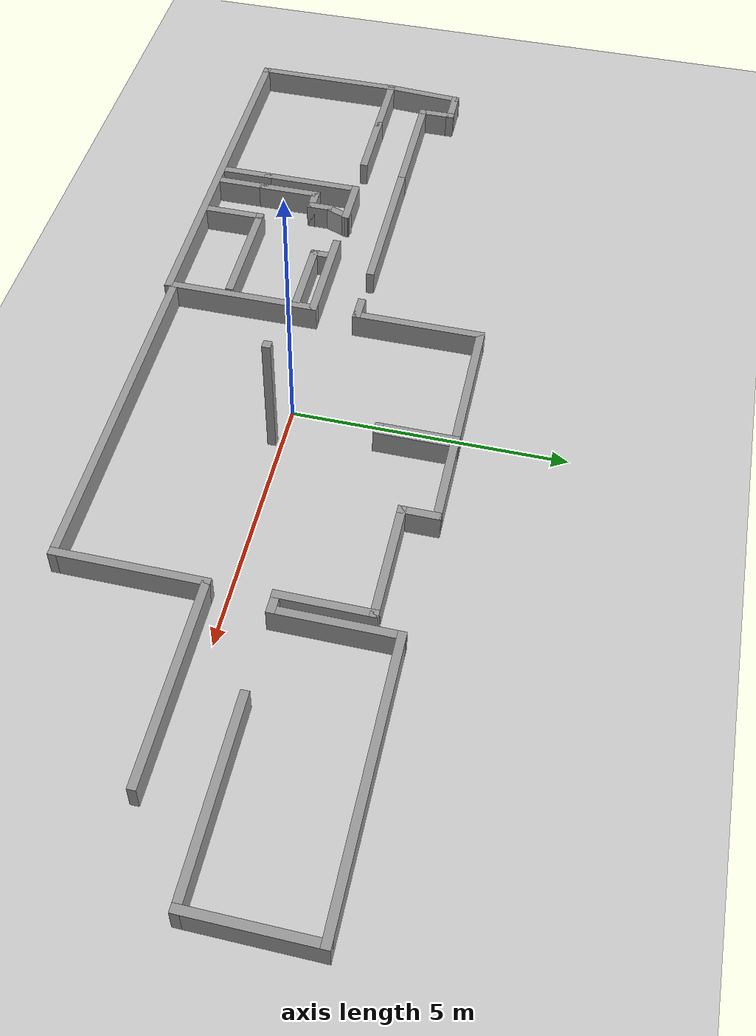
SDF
<?xml version="1.0"?>
<sdf version="1.4">
    <world name="office">
        <include>
            <uri>model://sun</uri>
        </include>

        <include>
            <uri>model://ground_plane</uri>
        </include>

        <include>
            <uri>model://racecar_description/models/home</uri>
            <pose>0 0 0 0 0 0</pose>
        </include>

        <gui>
            <camera name="user_camera">
                <pose>-1.62 -5.53 18.0 0 1.36 1.56</pose>
            </camera>
        </gui>
    </world>
</sdf>

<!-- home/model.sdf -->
<sdf version='1.6'>
  <model name='home'>
    <pose frame=''>2.81751 -1.485 0 0 -0 0</pose>
    <link name='Wall_12'>
      <collision name='Wall_12_Collision'>
        <geometry>
          <box>
            <size>0.5 0.15 0.5</size>
          </box>
        </geometry>
        <pose frame=''>0 0 0.25 0 -0 0</pose>
      </collision>
      <visual name='Wall_12_Visual'>
        <pose frame=''>0 0 0.25 0 -0 0</pose>
        <geometry>
          <box>
            <size>0.5 0.15 0.5</size>
          </box>
        </geometry>
        <material>
          <script>
            <uri>file://media/materials/scripts/gazebo.material</uri>
            <name>Gazebo/Grey</name>
          </script>
          <ambient>1 1 1 1</ambient>
        </material>
        <meta>
          <layer>0</layer>
        </meta>
      </visual>
      <pose frame=''>-2.42251 0.675 0 0 -0 3.14159</pose>
    </link>
    <link name='Wall_17'>
      <collision name='Wall_17_Collision'>
        <geometry>
          <box>
            <size>3 0.15 0.5</size>
          </box>
        </geometry>
        <pose frame=''>0 0 0.25 0 -0 0</pose>
      </collision>
      <visual name='Wall_17_Visual'>
        <pose frame=''>0 0 0.25 0 -0 0</pose>
        <geometry>
          <box>
            <size>3 0.15 0.5</size>
          </box>
        </geometry>
        <material>
          <script>
            <uri>file://media/materials/scripts/gazebo.material</uri>
            <name>Gazebo/Grey</name>
          </script>
          <ambient>1 1 1 1</ambient>
        </material>
        <meta>
          <layer>0</layer>
        </meta>
      </visual>
      <pose frame=''>-4.87251 0.675 0 0 -0 3.14159</pose>
    </link>
    <link name='Wall_2'>
      <collision name='Wall_2_Collision'>
        <geometry>
          <box>
            <size>0.15 0.15 2.5</size>
          </box>
        </geometry>
        <pose frame=''>0 0 1.25 0 -0 0</pose>
      </collision>
      <visual name='Wall_2_Visual'>
        <pose frame=''>0 0 1.25 0 -0 0</pose>
        <geometry>
          <box>
            <size>0.15 0.15 2.5</size>
          </box>
        </geometry>
        <material>
          <script>
            <uri>file://media/materials/scripts/gazebo.material</uri>
            <name>Gazebo/Grey</name>
          </script>
          <ambient>1 1 1 1</ambient>
        </material>
        <meta>
          <layer>0</layer>
        </meta>
      </visual>
      <pose frame=''>0.728138 -0.175 0 0 -0 0</pose>
    </link>
    <link name='Wall_21'>
      <collision name='Wall_21_Collision'>
        <geometry>
          <box>
            <size>1 0.15 0.5</size>
          </box>
        </geometry>
        <pose frame=''>0 0 0.25 0 -0 0</pose>
      </collision>
      <visual name='Wall_21_Visual'>
        <pose frame=''>0 0 0.25 0 -0 0</pose>
        <geometry>
          <box>
            <size>1 0.15 0.5</size>
          </box>
        </geometry>
        <material>
          <script>
            <uri>file://media/materials/scripts/gazebo.material</uri>
            <name>Gazebo/Grey</name>
          </script>
          <ambient>1 1 1 1</ambient>
        </material>
        <meta>
          <layer>0</layer>
        </meta>
      </visual>
      <pose frame=''>-5.37251 -0.175 0 0 -0 3.14159</pose>
    </link>
    <link name='Wall_25'>
      <collision name='Wall_25_Collision'>
        <geometry>
          <box>
            <size>1.5 0.15 0.5</size>
          </box>
        </geometry>
        <pose frame=''>0 0 0.25 0 -0 0</pose>
      </collision>
      <visual name='Wall_25_Visual'>
        <pose frame=''>0 0 0.25 0 -0 0</pose>
        <geometry>
          <box>
            <size>1.5 0.15 0.5</size>
          </box>
        </geometry>
        <material>
          <script>
            <uri>file://media/materials/scripts/gazebo.material</uri>
            <name>Gazebo/Grey</name>
          </script>
          <ambient>1 1 1 1</ambient>
        </material>
        <meta>
          <layer>0</layer>
        </meta>
      </visual>
      <pose frame=''>-7.32251 -0.175 0 0 -0 3.14159</pose>
    </link>
    <link name='Wall_27'>
      <collision name='Wall_27_Collision'>
        <geometry>
          <box>
            <size>2 0.15 0.5</size>
          </box>
        </geometry>
        <pose frame=''>0 0 0.25 0 -0 0</pose>
      </collision>
      <visual name='Wall_27_Visual'>
        <pose frame=''>0 0 0.25 0 -0 0</pose>
        <geometry>
          <box>
            <size>2 0.15 0.5</size>
          </box>
        </geometry>
        <material>
          <script>
            <uri>file://media/materials/scripts/gazebo.material</uri>
            <name>Gazebo/Grey</name>
          </script>
          <ambient>1 1 1 1</ambient>
        </material>
        <meta>
          <layer>0</layer>
        </meta>
      </visual>
      <pose frame=''>-5.79751 -1.1 0 0 -0 -1.5708</pose>
    </link>
    <link name='Wall_29'>
      <collision name='Wall_29_Collision'>
        <geometry>
          <box>
            <size>1.25 0.15 0.5</size>
          </box>
        </geometry>
        <pose frame=''>0 0 0.25 0 -0 0</pose>
      </collision>
      <visual name='Wall_29_Visual'>
        <pose frame=''>0 0 0.25 0 -0 0</pose>
        <geometry>
          <box>
            <size>1.25 0.15 0.5</size>
          </box>
        </geometry>
        <material>
          <script>
            <uri>file://media/materials/scripts/gazebo.material</uri>
            <name>Gazebo/Grey</name>
          </script>
          <ambient>1 1 1 1</ambient>
        </material>
        <meta>
          <layer>0</layer>
        </meta>
      </visual>
      <pose frame=''>-5.44751 -1.475 0 0 -0 1.5708</pose>
    </link>
    <link name='Wall_30'>
      <collision name='Wall_30_Collision'>
        <geometry>
          <box>
            <size>0.5 0.15 0.5</size>
          </box>
        </geometry>
        <pose frame=''>0 0 0.25 0 -0 0</pose>
      </collision>
      <visual name='Wall_30_Visual'>
        <pose frame=''>0 0 0.25 0 -0 0</pose>
        <geometry>
          <box>
            <size>0.5 0.15 0.5</size>
          </box>
        </geometry>
        <material>
          <script>
            <uri>file://media/materials/scripts/gazebo.material</uri>
            <name>Gazebo/Grey</name>
          </script>
          <ambient>1 1 1 1</ambient>
        </material>
        <meta>
          <layer>0</layer>
        </meta>
      </visual>
      <pose frame=''>-5.27251 -0.925 0 0 -0 0</pose>
    </link>
    <link name='Wall_32'>
      <collision name='Wall_32_Collision'>
        <geometry>
          <box>
            <size>0.5 0.15 0.5</size>
          </box>
        </geometry>
        <pose frame=''>0 0 0.25 0 -0 0</pose>
      </collision>
      <visual name='Wall_32_Visual'>
        <pose frame=''>0 0 0.25 0 -0 0</pose>
        <geometry>
          <box>
            <size>0.5 0.15 0.5</size>
          </box>
        </geometry>
        <material>
          <script>
            <uri>file://media/materials/scripts/gazebo.material</uri>
            <name>Gazebo/Grey</name>
          </script>
          <ambient>1 1 1 1</ambient>
        </material>
        <meta>
          <layer>0</layer>
        </meta>
      </visual>
      <pose frame=''>-5.09751 -0.75 0 0 -0 1.5708</pose>
    </link>
    <link name='Wall_33'>
      <collision name='Wall_33_Collision'>
        <geometry>
          <box>
            <size>0.5772 0.15 0.5</size>
          </box>
        </geometry>
        <pose frame=''>0 0 0.25 0 -0 0</pose>
      </collision>
      <visual name='Wall_33_Visual'>
        <pose frame=''>0 0 0.25 0 -0 0</pose>
        <geometry>
          <box>
            <size>0.5772 0.15 0.5</size>
          </box>
        </geometry>
        <material>
          <script>
            <uri>file://media/materials/scripts/gazebo.material</uri>
            <name>Gazebo/Grey</name>
          </script>
          <ambient>1 1 1 1</ambient>
        </material>
        <meta>
          <layer>0</layer>
        </meta>
      </visual>
      <pose frame=''>-5.02251 -0.375 0 0 -0 1.21203</pose>
    </link>
    <link name='Wall_35'>
      <collision name='Wall_35_Collision'>
        <geometry>
          <box>
            <size>0.5 0.15 0.5</size>
          </box>
        </geometry>
        <pose frame=''>0 0 0.25 0 -0 0</pose>
      </collision>
      <visual name='Wall_35_Visual'>
        <pose frame=''>0 0 0.25 0 -0 0</pose>
        <geometry>
          <box>
            <size>0.5 0.15 0.5</size>
          </box>
        </geometry>
        <material>
          <script>
            <uri>file://media/materials/scripts/gazebo.material</uri>
            <name>Gazebo/Grey</name>
          </script>
          <ambient>1 1 1 1</ambient>
        </material>
        <meta>
          <layer>0</layer>
        </meta>
      </visual>
      <pose frame=''>-3.72551 -0.352 0 0 -0 -1.5708</pose>
    </link>
    <link name='Wall_36'>
      <collision name='Wall_36_Collision'>
        <geometry>
          <box>
            <size>1.5 0.15 0.5</size>
          </box>
        </geometry>
        <pose frame=''>0 0 0.25 0 -0 0</pose>
      </collision>
      <visual name='Wall_36_Visual'>
        <pose frame=''>0 0 0.25 0 -0 0</pose>
        <geometry>
          <box>
            <size>1.5 0.15 0.5</size>
          </box>
        </geometry>
        <material>
          <script>
            <uri>file://media/materials/scripts/gazebo.material</uri>
            <name>Gazebo/Grey</name>
          </script>
          <ambient>1 1 1 1</ambient>
        </material>
        <meta>
          <layer>0</layer>
        </meta>
      </visual>
      <pose frame=''>-3.05051 -0.527 0 0 -0 0</pose>
    </link>
    <link name='Wall_39'>
      <collision name='Wall_39_Collision'>
        <geometry>
          <box>
            <size>3 0.15 0.5</size>
          </box>
        </geometry>
        <pose frame=''>0 0 0.25 0 -0 0</pose>
      </collision>
      <visual name='Wall_39_Visual'>
        <pose frame=''>0 0 0.25 0 -0 0</pose>
        <geometry>
          <box>
            <size>3 0.15 0.5</size>
          </box>
        </geometry>
        <material>
          <script>
            <uri>file://media/materials/scripts/gazebo.material</uri>
            <name>Gazebo/Grey</name>
          </script>
          <ambient>1 1 1 1</ambient>
        </material>
        <meta>
          <layer>0</layer>
        </meta>
      </visual>
      <pose frame=''>-2.24751 -1.6 0 0 -0 -1.5708</pose>
    </link>
    <link name='Wall_41'>
      <collision name='Wall_41_Collision'>
        <geometry>
          <box>
            <size>7.25 0.15 0.5</size>
          </box>
        </geometry>
        <pose frame=''>0 0 0.25 0 -0 0</pose>
      </collision>
      <visual name='Wall_41_Visual'>
        <pose frame=''>0 0 0.25 0 -0 0</pose>
        <geometry>
          <box>
            <size>7.25 0.15 0.5</size>
          </box>
        </geometry>
        <material>
          <script>
            <uri>file://media/materials/scripts/gazebo.material</uri>
            <name>Gazebo/Grey</name>
          </script>
          <ambient>1 1 1 1</ambient>
        </material>
        <meta>
          <layer>0</layer>
        </meta>
      </visual>
      <pose frame=''>-5.79751 -3.025 0 0 -0 3.14159</pose>
    </link>
    <link name='Wall_42'>
      <collision name='Wall_42_Collision'>
        <geometry>
          <box>
            <size>3 0.15 0.5</size>
          </box>
        </geometry>
        <pose frame=''>0 0 0.25 0 -0 0</pose>
      </collision>
      <visual name='Wall_42_Visual'>
        <pose frame=''>0 0 0.25 0 -0 0</pose>
        <geometry>
          <box>
            <size>3 0.15 0.5</size>
          </box>
        </geometry>
        <material>
          <script>
            <uri>file://media/materials/scripts/gazebo.material</uri>
            <name>Gazebo/Grey</name>
          </script>
          <ambient>1 1 1 1</ambient>
        </material>
        <meta>
          <layer>0</layer>
        </meta>
      </visual>
      <pose frame=''>-9.34751 -1.6 0 0 -0 1.5708</pose>
    </link>
    <link name='Wall_43'>
      <collision name='Wall_43_Collision'>
        <geometry>
          <box>
            <size>1.5 0.15 0.5</size>
          </box>
        </geometry>
        <pose frame=''>0 0 0.25 0 -0 0</pose>
      </collision>
      <visual name='Wall_43_Visual'>
        <pose frame=''>0 0 0.25 0 -0 0</pose>
        <geometry>
          <box>
            <size>1.5 0.15 0.5</size>
          </box>
        </geometry>
        <material>
          <script>
            <uri>file://media/materials/scripts/gazebo.material</uri>
            <name>Gazebo/Grey</name>
          </script>
          <ambient>1 1 1 1</ambient>
        </material>
        <meta>
          <layer>0</layer>
        </meta>
      </visual>
      <pose frame=''>-8.67251 -0.175 0 0 -0 0</pose>
    </link>
    <link name='Wall_45'>
      <collision name='Wall_45_Collision'>
        <geometry>
          <box>
            <size>1 0.15 0.5</size>
          </box>
        </geometry>
        <pose frame=''>0 0 0.25 0 -0 0</pose>
      </collision>
      <visual name='Wall_45_Visual'>
        <pose frame=''>0 0 0.25 0 -0 0</pose>
        <geometry>
          <box>
            <size>1 0.15 0.5</size>
          </box>
        </geometry>
        <material>
          <script>
            <uri>file://media/materials/scripts/gazebo.material</uri>
            <name>Gazebo/Grey</name>
          </script>
          <ambient>1 1 1 1</ambient>
        </material>
        <meta>
          <layer>0</layer>
        </meta>
      </visual>
      <pose frame=''>-5.79751 -2.45 0 0 -0 -1.5708</pose>
    </link>
    <link name='Wall_48'>
      <collision name='Wall_48_Collision'>
        <geometry>
          <box>
            <size>1 0.15 0.5</size>
          </box>
        </geometry>
        <pose frame=''>0 0 0.25 0 -0 0</pose>
      </collision>
      <visual name='Wall_48_Visual'>
        <pose frame=''>0 0 0.25 0 -0 0</pose>
        <geometry>
          <box>
            <size>1 0.15 0.5</size>
          </box>
        </geometry>
        <material>
          <script>
            <uri>file://media/materials/scripts/gazebo.material</uri>
            <name>Gazebo/Grey</name>
          </script>
          <ambient>1 1 1 1</ambient>
        </material>
        <meta>
          <layer>0</layer>
        </meta>
      </visual>
      <pose frame=''>-5.44751 -2.45 0 0 -0 -1.5708</pose>
    </link>
    <link name='Wall_50'>
      <collision name='Wall_50_Collision'>
        <geometry>
          <box>
            <size>1.25 0.15 0.5</size>
          </box>
        </geometry>
        <pose frame=''>0 0 0.25 0 -0 0</pose>
      </collision>
      <visual name='Wall_50_Visual'>
        <pose frame=''>0 0 0.25 0 -0 0</pose>
        <geometry>
          <box>
            <size>1.25 0.15 0.5</size>
          </box>
        </geometry>
        <material>
          <script>
            <uri>file://media/materials/scripts/gazebo.material</uri>
            <name>Gazebo/Grey</name>
          </script>
          <ambient>1 1 1 1</ambient>
        </material>
        <meta>
          <layer>0</layer>
        </meta>
      </visual>
      <pose frame=''>-4.53051 -2.408 0 0 -0 -1.5708</pose>
    </link>
    <link name='Wall_52'>
      <collision name='Wall_52_Collision'>
        <geometry>
          <box>
            <size>2.25 0.15 0.5</size>
          </box>
        </geometry>
        <pose frame=''>0 0 0.25 0 -0 0</pose>
      </collision>
      <visual name='Wall_52_Visual'>
        <pose frame=''>0 0 0.25 0 -0 0</pose>
        <geometry>
          <box>
            <size>2.25 0.15 0.5</size>
          </box>
        </geometry>
        <material>
          <script>
            <uri>file://media/materials/scripts/gazebo.material</uri>
            <name>Gazebo/Grey</name>
          </script>
          <ambient>1 1 1 1</ambient>
        </material>
        <meta>
          <layer>0</layer>
        </meta>
      </visual>
      <pose frame=''>-3.48051 -1.858 0 0 -0 0</pose>
    </link>
    <link name='Wall_54'>
      <collision name='Wall_54_Collision'>
        <geometry>
          <box>
            <size>2.5 0.15 0.5</size>
          </box>
        </geometry>
        <pose frame=''>0 0 0.25 0 -0 0</pose>
      </collision>
      <visual name='Wall_54_Visual'>
        <pose frame=''>0 0 0.25 0 -0 0</pose>
        <geometry>
          <box>
            <size>2.5 0.15 0.5</size>
          </box>
        </geometry>
        <material>
          <script>
            <uri>file://media/materials/scripts/gazebo.material</uri>
            <name>Gazebo/Grey</name>
          </script>
          <ambient>1 1 1 1</ambient>
        </material>
        <meta>
          <layer>0</layer>
        </meta>
      </visual>
      <pose frame=''>-7.47251 0.675 0 0 -0 3.14159</pose>
    </link>
    <link name='Wall_55'>
      <collision name='Wall_55_Collision'>
        <geometry>
          <box>
            <size>0.75 0.15 0.5</size>
          </box>
        </geometry>
        <pose frame=''>0 0 0.25 0 -0 0</pose>
      </collision>
      <visual name='Wall_55_Visual'>
        <pose frame=''>0 0 0.25 0 -0 0</pose>
        <geometry>
          <box>
            <size>0.75 0.15 0.5</size>
          </box>
        </geometry>
        <material>
          <script>
            <uri>file://media/materials/scripts/gazebo.material</uri>
            <name>Gazebo/Grey</name>
          </script>
          <ambient>1 1 1 1</ambient>
        </material>
        <meta>
          <layer>0</layer>
        </meta>
      </visual>
      <pose frame=''>-8.64751 0.975 0 0 -0 1.5708</pose>
    </link>
    <link name='Wall_56'>
      <collision name='Wall_56_Collision'>
        <geometry>
          <box>
            <size>0.75 0.15 0.5</size>
          </box>
        </geometry>
        <pose frame=''>0 0 0.25 0 -0 0</pose>
      </collision>
      <visual name='Wall_56_Visual'>
        <pose frame=''>0 0 0.25 0 -0 0</pose>
        <geometry>
          <box>
            <size>0.75 0.15 0.5</size>
          </box>
        </geometry>
        <material>
          <script>
            <uri>file://media/materials/scripts/gazebo.material</uri>
            <name>Gazebo/Grey</name>
          </script>
          <ambient>1 1 1 1</ambient>
        </material>
        <meta>
          <layer>0</layer>
        </meta>
      </visual>
      <pose frame=''>-8.94751 1.275 0 0 -0 3.14159</pose>
    </link>
    <link name='Wall_58'>
      <collision name='Wall_58_Collision'>
        <geometry>
          <box>
            <size>1.60344 0.15 0.5</size>
          </box>
        </geometry>
        <pose frame=''>0 0 0.25 0 -0 0</pose>
      </collision>
      <visual name='Wall_58_Visual'>
        <pose frame=''>0 0 0.25 0 -0 0</pose>
        <geometry>
          <box>
            <size>1.60344 0.15 0.5</size>
          </box>
        </geometry>
        <material>
          <script>
            <uri>file://media/materials/scripts/gazebo.material</uri>
            <name>Gazebo/Grey</name>
          </script>
          <ambient>1 1 1 1</ambient>
        </material>
        <meta>
          <layer>0</layer>
        </meta>
      </visual>
      <pose frame=''>-9.29751 0.55 0 0 -0 -1.63965</pose>
    </link>
    <link name='Wall_63'>
      <collision name='Wall_63_Collision'>
        <geometry>
          <box>
            <size>2.5 0.15 0.5</size>
          </box>
        </geometry>
        <pose frame=''>0 0 0.25 0 -0 0</pose>
      </collision>
      <visual name='Wall_63_Visual'>
        <pose frame=''>0 0 0.25 0 -0 0</pose>
        <geometry>
          <box>
            <size>2.5 0.15 0.5</size>
          </box>
        </geometry>
        <material>
          <script>
            <uri>file://media/materials/scripts/gazebo.material</uri>
            <name>Gazebo/Grey</name>
          </script>
          <ambient>1 1 1 1</ambient>
        </material>
        <meta>
          <layer>0</layer>
        </meta>
      </visual>
      <pose frame=''>-2.24751 1.85 0 0 -0 1.5708</pose>
    </link>
    <link name='Wall_64'>
      <collision name='Wall_64_Collision'>
        <geometry>
          <box>
            <size>2.75 0.15 0.5</size>
          </box>
        </geometry>
        <pose frame=''>0 0 0.25 0 -0 0</pose>
      </collision>
      <visual name='Wall_64_Visual'>
        <pose frame=''>0 0 0.25 0 -0 0</pose>
        <geometry>
          <box>
            <size>2.75 0.15 0.5</size>
          </box>
        </geometry>
        <material>
          <script>
            <uri>file://media/materials/scripts/gazebo.material</uri>
            <name>Gazebo/Grey</name>
          </script>
          <ambient>1 1 1 1</ambient>
        </material>
        <meta>
          <layer>0</layer>
        </meta>
      </visual>
      <pose frame=''>-0.947509 3.025 0 0 -0 0</pose>
    </link>
    <link name='Wall_66'>
      <collision name='Wall_66_Collision'>
        <geometry>
          <box>
            <size>1.51 0.15 0.5</size>
          </box>
        </geometry>
        <pose frame=''>0 0 0.25 0 -0 0</pose>
      </collision>
      <visual name='Wall_66_Visual'>
        <pose frame=''>0 0 0.25 0 -0 0</pose>
        <geometry>
          <box>
            <size>1.51 0.15 0.5</size>
          </box>
        </geometry>
        <material>
          <script>
            <uri>file://media/materials/scripts/gazebo.material</uri>
            <name>Gazebo/Grey</name>
          </script>
          <ambient>1 1 1 1</ambient>
        </material>
        <meta>
          <layer>0</layer>
        </meta>
      </visual>
      <pose frame=''>0.352491 2.345 0 0 -0 -1.5708</pose>
    </link>
    <link name='Wall_67'>
      <collision name='Wall_67_Collision'>
        <geometry>
          <box>
            <size>0.25 0.15 0.5</size>
          </box>
        </geometry>
        <pose frame=''>0 0 0.25 0 -0 0</pose>
      </collision>
      <visual name='Wall_67_Visual'>
        <pose frame=''>0 0 0.25 0 -0 0</pose>
        <geometry>
          <box>
            <size>0.25 0.15 0.5</size>
          </box>
        </geometry>
        <material>
          <script>
            <uri>file://media/materials/scripts/gazebo.material</uri>
            <name>Gazebo/Grey</name>
          </script>
          <ambient>1 1 1 1</ambient>
        </material>
        <meta>
          <layer>0</layer>
        </meta>
      </visual>
      <pose frame=''>0.402491 1.665 0 0 -0 0</pose>
    </link>
    <link name='Wall_68'>
      <collision name='Wall_68_Collision'>
        <geometry>
          <box>
            <size>1.51 0.15 0.5</size>
          </box>
        </geometry>
        <pose frame=''>0 0 0.25 0 -0 0</pose>
      </collision>
      <visual name='Wall_68_Visual'>
        <pose frame=''>0 0 0.25 0 -0 0</pose>
        <geometry>
          <box>
            <size>1.51 0.15 0.5</size>
          </box>
        </geometry>
        <material>
          <script>
            <uri>file://media/materials/scripts/gazebo.material</uri>
            <name>Gazebo/Grey</name>
          </script>
          <ambient>1 1 1 1</ambient>
        </material>
        <meta>
          <layer>0</layer>
        </meta>
      </visual>
      <pose frame=''>0.452491 2.345 0 0 -0 1.5708</pose>
    </link>
    <link name='Wall_69'>
      <collision name='Wall_69_Collision'>
        <geometry>
          <box>
            <size>1.75 0.15 0.5</size>
          </box>
        </geometry>
        <pose frame=''>0 0 0.25 0 -0 0</pose>
      </collision>
      <visual name='Wall_69_Visual'>
        <pose frame=''>0 0 0.25 0 -0 0</pose>
        <geometry>
          <box>
            <size>1.75 0.15 0.5</size>
          </box>
        </geometry>
        <material>
          <script>
            <uri>file://media/materials/scripts/gazebo.material</uri>
            <name>Gazebo/Grey</name>
          </script>
          <ambient>1 1 1 1</ambient>
        </material>
        <meta>
          <layer>0</layer>
        </meta>
      </visual>
      <pose frame=''>1.25249 3.025 0 0 -0 0</pose>
    </link>
    <link name='Wall_70'>
      <collision name='Wall_70_Collision'>
        <geometry>
          <box>
            <size>0.75 0.15 0.5</size>
          </box>
        </geometry>
        <pose frame=''>0 0 0.25 0 -0 0</pose>
      </collision>
      <visual name='Wall_70_Visual'>
        <pose frame=''>0 0 0.25 0 -0 0</pose>
        <geometry>
          <box>
            <size>0.75 0.15 0.5</size>
          </box>
        </geometry>
        <material>
          <script>
            <uri>file://media/materials/scripts/gazebo.material</uri>
            <name>Gazebo/Grey</name>
          </script>
          <ambient>1 1 1 1</ambient>
        </material>
        <meta>
          <layer>0</layer>
        </meta>
      </visual>
      <pose frame=''>2.05249 2.725 0 0 -0 -1.5708</pose>
    </link>
    <link name='Wall_71'>
      <collision name='Wall_71_Collision'>
        <geometry>
          <box>
            <size>2.25 0.15 0.5</size>
          </box>
        </geometry>
        <pose frame=''>0 0 0.25 0 -0 0</pose>
      </collision>
      <visual name='Wall_71_Visual'>
        <pose frame=''>0 0 0.25 0 -0 0</pose>
        <geometry>
          <box>
            <size>2.25 0.15 0.5</size>
          </box>
        </geometry>
        <material>
          <script>
            <uri>file://media/materials/scripts/gazebo.material</uri>
            <name>Gazebo/Grey</name>
          </script>
          <ambient>1 1 1 1</ambient>
        </material>
        <meta>
          <layer>0</layer>
        </meta>
      </visual>
      <pose frame=''>3.10249 2.425 0 0 -0 0</pose>
    </link>
    <link name='Wall_72'>
      <collision name='Wall_72_Collision'>
        <geometry>
          <box>
            <size>1.75 0.15 0.5</size>
          </box>
        </geometry>
        <pose frame=''>0 0 0.25 0 -0 0</pose>
      </collision>
      <visual name='Wall_72_Visual'>
        <pose frame=''>0 0 0.25 0 -0 0</pose>
        <geometry>
          <box>
            <size>1.75 0.15 0.5</size>
          </box>
        </geometry>
        <material>
          <script>
            <uri>file://media/materials/scripts/gazebo.material</uri>
            <name>Gazebo/Grey</name>
          </script>
          <ambient>1 1 1 1</ambient>
        </material>
        <meta>
          <layer>0</layer>
        </meta>
      </visual>
      <pose frame=''>4.15249 1.625 0 0 -0 -1.5708</pose>
    </link>
    <link name='Wall_73'>
      <collision name='Wall_73_Collision'>
        <geometry>
          <box>
            <size>0.443 0.15 0.5</size>
          </box>
        </geometry>
        <pose frame=''>0 0 0.25 0 -0 0</pose>
      </collision>
      <visual name='Wall_73_Visual'>
        <pose frame=''>0 0 0.25 0 -0 0</pose>
        <geometry>
          <box>
            <size>0.443 0.15 0.5</size>
          </box>
        </geometry>
        <material>
          <script>
            <uri>file://media/materials/scripts/gazebo.material</uri>
            <name>Gazebo/Grey</name>
          </script>
          <ambient>1 1 1 1</ambient>
        </material>
        <meta>
          <layer>0</layer>
        </meta>
      </visual>
      <pose frame=''>4.29899 0.825 0 0 -0 0</pose>
    </link>
    <link name='Wall_74'>
      <collision name='Wall_74_Collision'>
        <geometry>
          <box>
            <size>2.25 0.15 0.5</size>
          </box>
        </geometry>
        <pose frame=''>0 0 0.25 0 -0 0</pose>
      </collision>
      <visual name='Wall_74_Visual'>
        <pose frame=''>0 0 0.25 0 -0 0</pose>
        <geometry>
          <box>
            <size>2.25 0.15 0.5</size>
          </box>
        </geometry>
        <material>
          <script>
            <uri>file://media/materials/scripts/gazebo.material</uri>
            <name>Gazebo/Grey</name>
          </script>
          <ambient>1 1 1 1</ambient>
        </material>
        <meta>
          <layer>0</layer>
        </meta>
      </visual>
      <pose frame=''>4.44549 1.875 0 0 -0 1.5708</pose>
    </link>
    <link name='Wall_75'>
      <collision name='Wall_75_Collision'>
        <geometry>
          <box>
            <size>5.057 0.15 0.5</size>
          </box>
        </geometry>
        <pose frame=''>0 0 0.25 0 -0 0</pose>
      </collision>
      <visual name='Wall_75_Visual'>
        <pose frame=''>0 0 0.25 0 -0 0</pose>
        <geometry>
          <box>
            <size>5.057 0.15 0.5</size>
          </box>
        </geometry>
        <material>
          <script>
            <uri>file://media/materials/scripts/gazebo.material</uri>
            <name>Gazebo/Grey</name>
          </script>
          <ambient>1 1 1 1</ambient>
        </material>
        <meta>
          <layer>0</layer>
        </meta>
      </visual>
      <pose frame=''>6.89899 2.925 0 0 -0 0</pose>
    </link>
    <link name='Wall_8'>
      <collision name='Wall_8_Collision'>
        <geometry>
          <box>
            <size>2 0.15 0.5</size>
          </box>
        </geometry>
        <pose frame=''>0 0 0.25 0 -0 0</pose>
      </collision>
      <visual name='Wall_8_Visual'>
        <pose frame=''>0 0 0.25 0 -0 0</pose>
        <geometry>
          <box>
            <size>2 0.15 0.5</size>
          </box>
        </geometry>
        <material>
          <script>
            <uri>file://media/materials/scripts/gazebo.material</uri>
            <name>Gazebo/Grey</name>
          </script>
          <ambient>1 1 1 1</ambient>
        </material>
        <meta>
          <layer>0</layer>
        </meta>
      </visual>
      <pose frame=''>-3.17251 -0.175 0 0 -0 3.14159</pose>
    </link>
    <link name='Wall_80'>
      <collision name='Wall_80_Collision'>
        <geometry>
          <box>
            <size>2.25 0.15 0.5</size>
          </box>
        </geometry>
        <pose frame=''>0 0 0.25 0 -0 0</pose>
      </collision>
      <visual name='Wall_80_Visual'>
        <pose frame=''>0 0 0.25 0 -0 0</pose>
        <geometry>
          <box>
            <size>2.25 0.15 0.5</size>
          </box>
        </geometry>
        <material>
          <script>
            <uri>file://media/materials/scripts/gazebo.material</uri>
            <name>Gazebo/Grey</name>
          </script>
          <ambient>1 1 1 1</ambient>
        </material>
        <meta>
          <layer>0</layer>
        </meta>
      </visual>
      <pose frame=''>9.35249 1.875 0 0 -0 -1.5708</pose>
    </link>
    <link name='Wall_83'>
      <collision name='Wall_83_Collision'>
        <geometry>
          <box>
            <size>3.5 0.15 0.5</size>
          </box>
        </geometry>
        <pose frame=''>0 0 0.25 0 -0 0</pose>
      </collision>
      <visual name='Wall_83_Visual'>
        <pose frame=''>0 0 0.25 0 -0 0</pose>
        <geometry>
          <box>
            <size>3.5 0.15 0.5</size>
          </box>
        </geometry>
        <material>
          <script>
            <uri>file://media/materials/scripts/gazebo.material</uri>
            <name>Gazebo/Grey</name>
          </script>
          <ambient>1 1 1 1</ambient>
        </material>
        <meta>
          <layer>0</layer>
        </meta>
      </visual>
      <pose frame=''>7.67749 0.825 0 0 -0 3.14159</pose>
    </link>
    <link name='Wall_85'>
      <collision name='Wall_85_Collision'>
        <geometry>
          <box>
            <size>3.75 0.15 0.5</size>
          </box>
        </geometry>
        <pose frame=''>0 0 0.25 0 -0 0</pose>
      </collision>
      <visual name='Wall_85_Visual'>
        <pose frame=''>0 0 0.25 0 -0 0</pose>
        <geometry>
          <box>
            <size>3.75 0.15 0.5</size>
          </box>
        </geometry>
        <material>
          <script>
            <uri>file://media/materials/scripts/gazebo.material</uri>
            <name>Gazebo/Grey</name>
          </script>
          <ambient>1 1 1 1</ambient>
        </material>
        <meta>
          <layer>0</layer>
        </meta>
      </visual>
      <pose frame=''>5.97849 -0.32 0 0 -0 0</pose>
    </link>
    <link name='Wall_90'>
      <collision name='Wall_90_Collision'>
        <geometry>
          <box>
            <size>2.75 0.15 0.5</size>
          </box>
        </geometry>
        <pose frame=''>0 0 0.25 0 -0 0</pose>
      </collision>
      <visual name='Wall_90_Visual'>
        <pose frame=''>0 0 0.25 0 -0 0</pose>
        <geometry>
          <box>
            <size>2.75 0.15 0.5</size>
          </box>
        </geometry>
        <material>
          <script>
            <uri>file://media/materials/scripts/gazebo.material</uri>
            <name>Gazebo/Grey</name>
          </script>
          <ambient>1 1 1 1</ambient>
        </material>
        <meta>
          <layer>0</layer>
        </meta>
      </visual>
      <pose frame=''>4.17849 -1.62 0 0 -0 -1.5708</pose>
    </link>
    <link name='Wall_91'>
      <collision name='Wall_91_Collision'>
        <geometry>
          <box>
            <size>6.5 0.15 0.5</size>
          </box>
        </geometry>
        <pose frame=''>0 0 0.25 0 -0 0</pose>
      </collision>
      <visual name='Wall_91_Visual'>
        <pose frame=''>0 0 0.25 0 -0 0</pose>
        <geometry>
          <box>
            <size>6.5 0.15 0.5</size>
          </box>
        </geometry>
        <material>
          <script>
            <uri>file://media/materials/scripts/gazebo.material</uri>
            <name>Gazebo/Grey</name>
          </script>
          <ambient>1 1 1 1</ambient>
        </material>
        <meta>
          <layer>0</layer>
        </meta>
      </visual>
      <pose frame=''>1.00349 -2.92 0 0 -0 3.14159</pose>
    </link>
    <static>1</static>
  </model>
</sdf>
